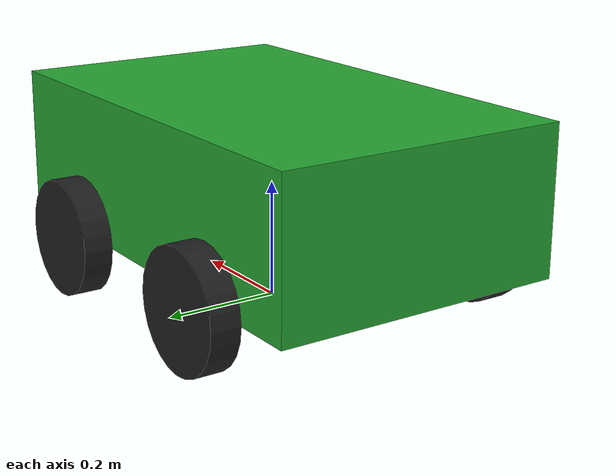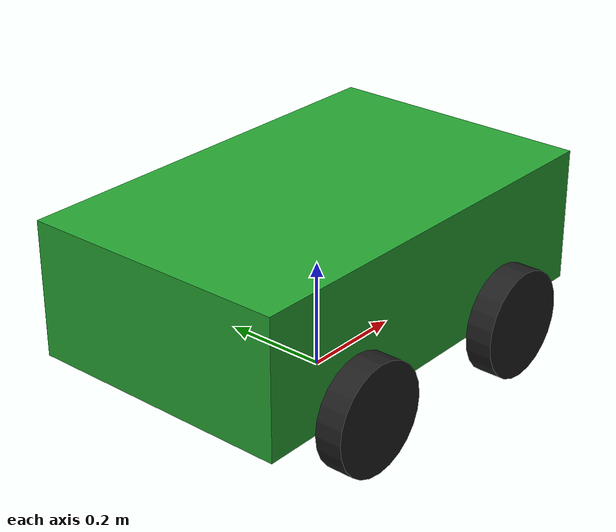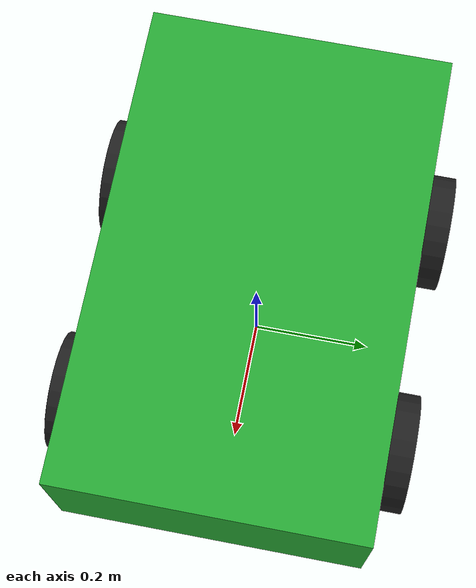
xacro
<?xml version="1.0"?>

<robot xmlns:xacro="http://www.ros.org/wiki/xacro">

    <xacro:property name="body_length" value="0.8"/>
    <xacro:property name="body_width" value="0.5"/>
    <xacro:property name="body_height" value="0.25"/>
    <xacro:property name="wheel_radius" value="0.1"/>
    <xacro:property name="wheel_length" value="0.05"/>

    <link name="base_link">
        <visual>
            <geometry>
                <box size="${body_length} ${body_width} ${body_height}"/>
            </geometry>
            <origin xyz="0.0 0.0 ${body_height / 2}" rpy="0.0 0.0 0.0"/>
            <material name="green"/>
        </visual>
        <collision>
            <geometry>
                <box size="${body_length} ${body_width} ${body_height}"/>
            </geometry>
            <origin xyz="0.0 0.0 ${body_height / 2}" rpy="0.0 0.0 0.0"/>
        </collision>
        <xacro:box_inertia m="5.0" l="${2* body_length}" w="${2*body_width}" h="${2*body_height}"
                           xyz="0 0 ${body_height / 2.0}" rpy="0 0 0" />
    </link>

    <xacro:macro name="wheel_link" params="prefix">
        <link name="${prefix}_wheel_link">
            <visual>
                <geometry>
                    <cylinder radius="${wheel_radius}" length="${wheel_length}" />
                </geometry>
                <origin xyz="0 0 0" rpy="${pi / 2.0} 0 0" />
                <material name="black" />
            </visual>
            <collision>
                <geometry>
                    <cylinder radius="${wheel_radius}" length="${wheel_length}" />
                </geometry>
                <origin xyz="0 0 0" rpy="${pi / 2.0} 0 0" />
            </collision>
            <xacro:cylinder_inertia m="1.0" r="${2 * wheel_radius}" h="${2*wheel_length}"
                                    xyz="0 0 0" rpy="${pi / 2.0} 0 0" />
        </link>
    </xacro:macro>

    <xacro:wheel_link prefix="right_top"/>
    <xacro:wheel_link prefix="right_down"/>
    <xacro:wheel_link prefix="left_top"/>
    <xacro:wheel_link prefix="left_down"/>

    <link name="base_footprint"/>

    <joint name="base_base" type="fixed">
        <parent link="base_footprint"/>
        <child link="base_link"/>
        <origin xyz="0.0 0.0 ${wheel_radius}" rpy="0.0 0.0 0.0"/>
    </joint>

    <joint name="base_right_top" type="continuous">
        <parent link="base_link"/>
        <child link="right_top_wheel_link"/>
        <axis xyz="0 1 0"/>
        <origin xyz="${body_length / 4.0} ${-(body_width + wheel_length) / 2.0} 0" rpy="0 0 0"/>
        <limit effort="10000" velocity="1000" />
	    <dynamics damping="1.0" friction="1.0" />
    </joint>

    <joint name="base_left_top" type="continuous">
        <parent link="base_link"/>
        <child link="left_top_wheel_link"/>
        <axis xyz="0 1 0"/>
        <origin xyz="${body_length / 4.0} ${(body_width + wheel_length) / 2.0} 0" rpy="0 0 0"/>
        <limit effort="10000" velocity="1000" />
	    <dynamics damping="1.0" friction="1.0" />
    </joint>

    <joint name="base_right_down" type="continuous">
        <parent link="base_link"/>
        <child link="right_down_wheel_link"/>
        <axis xyz="0 1 0"/>
        <origin xyz="${-body_length / 4.0} ${-(body_width + wheel_length) / 2.0} 0" rpy="0 0 0"/>
        <limit effort="10000" velocity="1000" />
	    <dynamics damping="1.0" friction="1.0" />
    </joint>

    <joint name="base_left_down" type="continuous">
        <parent link="base_link"/>
        <child link="left_down_wheel_link"/>
        <axis xyz="0 1 0"/>
        <origin xyz="${-body_length / 4.0} ${(body_width + wheel_length) / 2.0} 0" rpy="0 0 0"/>
        <limit effort="10000" velocity="1000" />
	    <dynamics damping="1.0" friction="1.0" />
    </joint>

</robot>
